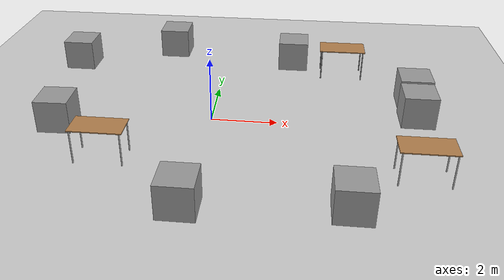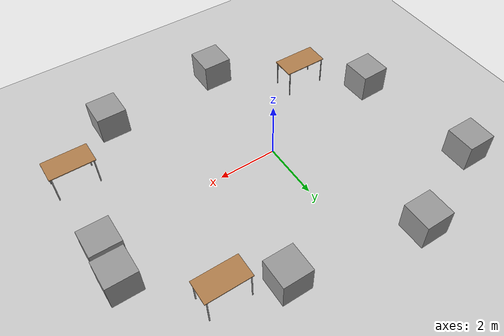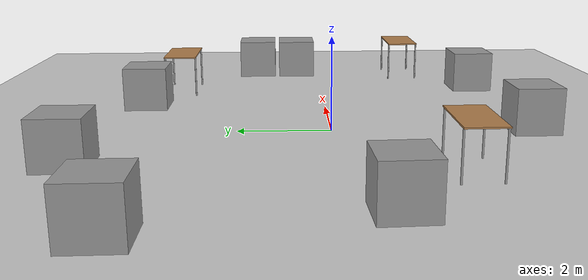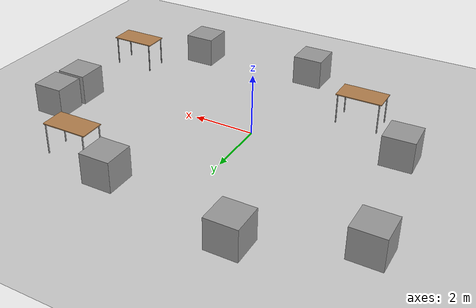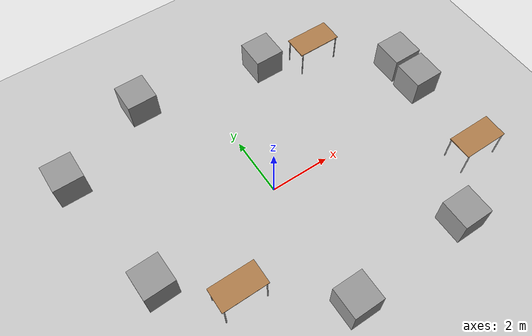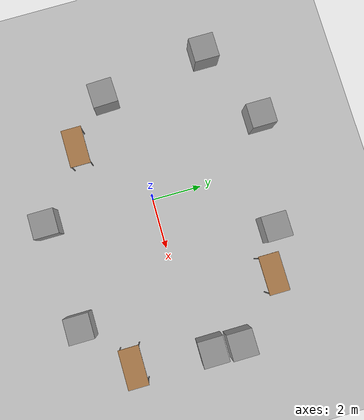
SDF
<sdf version="1.6">
 <world name="default">
  <light name="sun" type="directional">
   <pose>0 0 10 0 -0 0</pose>
   <diffuse>0.8 0.8 0.8 1</diffuse>
   <specular>0.2 0.2 0.2 1</specular>
   <attenuation>
    <range>1000</range>
    <constant>0.9</constant>
    <linear>0.01</linear>
    <quadratic>0.001</quadratic>
   </attenuation>
   <direction>-0.5 0.1 -0.9</direction>
  </light>
  <model name="ground_plane">
   <static>1</static>
   <link name="link">
    <collision name="collision">
     <geometry><plane><normal>0 0 1</normal><size>100 100</size></plane></geometry>
     <surface>
      <contact><collide_bitmask>65535</collide_bitmask></contact>
      <friction><ode><mu>100</mu><mu2>50</mu2></ode></friction>
     </surface>
    </collision>
    <visual name="visual">
     <cast_shadows>0</cast_shadows>
     <geometry><plane><normal>0 0 1</normal><size>100 100</size></plane></geometry>
     <material>
      <script><uri>file://media/materials/scripts/gazebo.material</uri><name>Gazebo/Grey</name></script>
     </material>
    </visual>
   </link>
  </model>
  <gravity>0 0 -9.8</gravity>
  <magnetic_field>6e-06 2.3e-05 -4.2e-05</magnetic_field>
  <atmosphere type="adiabatic"/>
  <physics name="default_physics" default="0" type="ode">
   <max_step_size>0.001</max_step_size>
   <real_time_factor>1</real_time_factor>
   <real_time_update_rate>1000</real_time_update_rate>
  </physics>
  <scene><ambient>0.4 0.4 0.4 1</ambient><background>0.7 0.7 0.7 1</background><shadows>1</shadows></scene>
  <audio><device>default</device></audio>
  <spherical_coordinates>
   <surface_model>EARTH_WGS84</surface_model>
   <latitude_deg>0</latitude_deg>
   <longitude_deg>0</longitude_deg>
   <elevation>0</elevation>
   <heading_deg>0</heading_deg>
  </spherical_coordinates>
  <model name="unit_box">
   <pose>-5.17101 3.59255 0.499995 0 1e-05 1e-05</pose>
   <link name="link">
    <inertial>
     <mass>1</mass>
     <inertia>
      <ixx>0.166667</ixx>
      <ixy>0</ixy>
      <ixz>0</ixz>
      <iyy>0.166667</iyy>
      <iyz>0</iyz>
      <izz>0.166667</izz>
     </inertia>
    </inertial>
    <collision name="collision"><geometry><box><size>1 1 1</size></box></geometry></collision>
    <visual name="visual">
     <geometry><box><size>1 1 1</size></box></geometry>
     <material>
      <script><name>Gazebo/Grey</name><uri>file://media/materials/scripts/gazebo.material</uri></script>
     </material>
    </visual>
   </link>
  </model>
  <model name="unit_box_clone">
   <pose>-4.49734 -0.756354 0.5 0 -0 0.031297</pose>
   <link name="link">
    <inertial>
     <mass>1</mass>
     <inertia>
      <ixx>0.166667</ixx>
      <ixy>0</ixy>
      <ixz>0</ixz>
      <iyy>0.166667</iyy>
      <iyz>0</iyz>
      <izz>0.166667</izz>
     </inertia>
    </inertial>
    <collision name="collision"><geometry><box><size>1 1 1</size></box></geometry></collision>
    <visual name="visual">
     <geometry><box><size>1 1 1</size></box></geometry>
     <material>
      <script><name>Gazebo/Grey</name><uri>file://media/materials/scripts/gazebo.material</uri></script>
     </material>
    </visual>
   </link>
  </model>
  <model name="unit_box_clone_0">
   <pose>-2 5.00002 0.499995 0 1e-05 -5e-06</pose>
   <link name="link">
    <inertial>
     <mass>1</mass>
     <inertia>
      <ixx>0.166667</ixx>
      <ixy>0</ixy>
      <ixz>0</ixz>
      <iyy>0.166667</iyy>
      <iyz>0</iyz>
      <izz>0.166667</izz>
     </inertia>
    </inertial>
    <collision name="collision"><geometry><box><size>1 1 1</size></box></geometry></collision>
    <visual name="visual">
     <geometry><box><size>1 1 1</size></box></geometry>
     <material>
      <script><name>Gazebo/Grey</name><uri>file://media/materials/scripts/gazebo.material</uri></script>
     </material>
    </visual>
   </link>
  </model>
  <model name="unit_box_clone_1">
   <pose>2.38191 4.25167 0.499995 1e-05 -0 5e-06</pose>
   <link name="link">
    <inertial>
     <mass>1</mass>
     <inertia>
      <ixx>0.166667</ixx>
      <ixy>0</ixy>
      <ixz>0</ixz>
      <iyy>0.166667</iyy>
      <iyz>0</iyz>
      <izz>0.166667</izz>
     </inertia>
    </inertial>
    <collision name="collision"><geometry><box><size>1 1 1</size></box></geometry></collision>
    <visual name="visual">
     <geometry><box><size>1 1 1</size></box></geometry>
     <material>
      <script><name>Gazebo/Grey</name><uri>file://media/materials/scripts/gazebo.material</uri></script>
     </material>
    </visual>
   </link>
  </model>
  <model name="unit_box_clone_2">
   <pose>-0.165397 -4.27442 0.499995 0 1e-05 -5e-06</pose>
   <link name="link">
    <inertial>
     <mass>1</mass>
     <inertia>
      <ixx>0.166667</ixx>
      <ixy>0</ixy>
      <ixz>0</ixz>
      <iyy>0.166667</iyy>
      <iyz>0</iyz>
      <izz>0.166667</izz>
     </inertia>
    </inertial>
    <collision name="collision"><geometry><box><size>1 1 1</size></box></geometry></collision>
    <visual name="visual">
     <geometry><box><size>1 1 1</size></box></geometry>
     <material>
      <script><name>Gazebo/Grey</name><uri>file://media/materials/scripts/gazebo.material</uri></script>
     </material>
    </visual>
   </link>
  </model>
  <model name="unit_box_clone_3">
   <pose>4 -4 0.499995 1e-05 -0 5e-06</pose>
   <link name="link">
    <inertial>
     <mass>1</mass>
     <inertia>
      <ixx>0.166667</ixx>
      <ixy>0</ixy>
      <ixz>0</ixz>
      <iyy>0.166667</iyy>
      <iyz>0</iyz>
      <izz>0.166667</izz>
     </inertia>
    </inertial>
    <collision name="collision"><geometry><box><size>1 1 1</size></box></geometry></collision>
    <visual name="visual">
     <geometry><box><size>1 1 1</size></box></geometry>
     <material>
      <script><name>Gazebo/Grey</name><uri>file://media/materials/scripts/gazebo.material</uri></script>
     </material>
    </visual>
   </link>
  </model>
  <model name="unit_box_clone_4">
   <pose>6.19372 0.594708 0.499995 0 1e-05 -5e-06</pose>
   <link name="link">
    <inertial>
     <mass>1</mass>
     <inertia>
      <ixx>0.166667</ixx>
      <ixy>0</ixy>
      <ixz>0</ixz>
      <iyy>0.166667</iyy>
      <iyz>0</iyz>
      <izz>0.166667</izz>
     </inertia>
    </inertial>
    <collision name="collision"><geometry><box><size>1 1 1</size></box></geometry></collision>
    <visual name="visual">
     <geometry><box><size>1 1 1</size></box></geometry>
     <material>
      <script><name>Gazebo/Grey</name><uri>file://media/materials/scripts/gazebo.material</uri></script>
     </material>
    </visual>
   </link>
  </model>
  <model name="table">
   <static>1</static>
   <link name="link">
    <collision name="surface">
     <pose>0 0 1 0 -0 0</pose>
     <geometry><box><size>1.5 0.8 0.03</size></box></geometry>
     <surface><friction><ode><mu>0.6</mu><mu2>0.6</mu2></ode></friction></surface>
    </collision>
    <visual name="visual1">
     <pose>0 0 1 0 -0 0</pose>
     <geometry><box><size>1.5 0.8 0.03</size></box></geometry>
     <material>
      <script><uri>file://media/materials/scripts/gazebo.material</uri><name>Gazebo/Wood</name></script>
     </material>
    </visual>
    <collision name="front_left_leg">
     <pose>0.68 0.38 0.5 0 -0 0</pose>
     <geometry><cylinder><radius>0.02</radius><length>1</length></cylinder></geometry>
    </collision>
    <visual name="front_left_leg">
     <pose>0.68 0.38 0.5 0 -0 0</pose>
     <geometry><cylinder><radius>0.02</radius><length>1</length></cylinder></geometry>
     <material>
      <script><uri>file://media/materials/scripts/gazebo.material</uri><name>Gazebo/Grey</name></script>
     </material>
    </visual>
    <collision name="front_right_leg">
     <pose>0.68 -0.38 0.5 0 -0 0</pose>
     <geometry><cylinder><radius>0.02</radius><length>1</length></cylinder></geometry>
    </collision>
    <visual name="front_right_leg">
     <pose>0.68 -0.38 0.5 0 -0 0</pose>
     <geometry><cylinder><radius>0.02</radius><length>1</length></cylinder></geometry>
     <material>
      <script><uri>file://media/materials/scripts/gazebo.material</uri><name>Gazebo/Grey</name></script>
     </material>
    </visual>
    <collision name="back_right_leg">
     <pose>-0.68 -0.38 0.5 0 -0 0</pose>
     <geometry><cylinder><radius>0.02</radius><length>1</length></cylinder></geometry>
    </collision>
    <visual name="back_right_leg">
     <pose>-0.68 -0.38 0.5 0 -0 0</pose>
     <geometry><cylinder><radius>0.02</radius><length>1</length></cylinder></geometry>
     <material>
      <script><uri>file://media/materials/scripts/gazebo.material</uri><name>Gazebo/Grey</name></script>
     </material>
    </visual>
    <collision name="back_left_leg">
     <pose>-0.68 0.38 0.5 0 -0 0</pose>
     <geometry><cylinder><radius>0.02</radius><length>1</length></cylinder></geometry>
    </collision>
    <visual name="back_left_leg">
     <pose>-0.68 0.38 0.5 0 -0 0</pose>
     <geometry><cylinder><radius>0.02</radius><length>1</length></cylinder></geometry>
     <material>
      <script><uri>file://media/materials/scripts/gazebo.material</uri><name>Gazebo/Grey</name></script>
     </material>
    </visual>
   </link>
   <pose>-2.69705 -2.30796 0 0 -0 0</pose>
  </model>
  <model name="table_clone">
   <static>1</static>
   <link name="link">
    <collision name="surface">
     <pose>0 0 1 0 -0 0</pose>
     <geometry><box><size>1.5 0.8 0.03</size></box></geometry>
     <surface><friction><ode><mu>0.6</mu><mu2>0.6</mu2></ode></friction></surface>
    </collision>
    <visual name="visual1">
     <pose>0 0 1 0 -0 0</pose>
     <geometry><box><size>1.5 0.8 0.03</size></box></geometry>
     <material>
      <script><uri>file://media/materials/scripts/gazebo.material</uri><name>Gazebo/Wood</name></script>
     </material>
    </visual>
    <collision name="front_left_leg">
     <pose>0.68 0.38 0.5 0 -0 0</pose>
     <geometry><cylinder><radius>0.02</radius><length>1</length></cylinder></geometry>
    </collision>
    <visual name="front_left_leg">
     <pose>0.68 0.38 0.5 0 -0 0</pose>
     <geometry><cylinder><radius>0.02</radius><length>1</length></cylinder></geometry>
     <material>
      <script><uri>file://media/materials/scripts/gazebo.material</uri><name>Gazebo/Grey</name></script>
     </material>
    </visual>
    <collision name="front_right_leg">
     <pose>0.68 -0.38 0.5 0 -0 0</pose>
     <geometry><cylinder><radius>0.02</radius><length>1</length></cylinder></geometry>
    </collision>
    <visual name="front_right_leg">
     <pose>0.68 -0.38 0.5 0 -0 0</pose>
     <geometry><cylinder><radius>0.02</radius><length>1</length></cylinder></geometry>
     <material>
      <script><uri>file://media/materials/scripts/gazebo.material</uri><name>Gazebo/Grey</name></script>
     </material>
    </visual>
    <collision name="back_right_leg">
     <pose>-0.68 -0.38 0.5 0 -0 0</pose>
     <geometry><cylinder><radius>0.02</radius><length>1</length></cylinder></geometry>
    </collision>
    <visual name="back_right_leg">
     <pose>-0.68 -0.38 0.5 0 -0 0</pose>
     <geometry><cylinder><radius>0.02</radius><length>1</length></cylinder></geometry>
     <material>
      <script><uri>file://media/materials/scripts/gazebo.material</uri><name>Gazebo/Grey</name></script>
     </material>
    </visual>
    <collision name="back_left_leg">
     <pose>-0.68 0.38 0.5 0 -0 0</pose>
     <geometry><cylinder><radius>0.02</radius><length>1</length></cylinder></geometry>
    </collision>
    <visual name="back_left_leg">
     <pose>-0.68 0.38 0.5 0 -0 0</pose>
     <geometry><cylinder><radius>0.02</radius><length>1</length></cylinder></geometry>
     <material>
      <script><uri>file://media/materials/scripts/gazebo.material</uri><name>Gazebo/Grey</name></script>
     </material>
    </visual>
   </link>
   <pose>4.04727 3.61293 0 0 -0 0</pose>
  </model>
  <model name="table_clone_clone">
   <static>1</static>
   <link name="link">
    <collision name="surface">
     <pose>0 0 1 0 -0 0</pose>
     <geometry><box><size>1.5 0.8 0.03</size></box></geometry>
     <surface><friction><ode><mu>0.6</mu><mu2>0.6</mu2></ode></friction></surface>
    </collision>
    <visual name="visual1">
     <pose>0 0 1 0 -0 0</pose>
     <geometry><box><size>1.5 0.8 0.03</size></box></geometry>
     <material>
      <script><uri>file://media/materials/scripts/gazebo.material</uri><name>Gazebo/Wood</name></script>
     </material>
    </visual>
    <collision name="front_left_leg">
     <pose>0.68 0.38 0.5 0 -0 0</pose>
     <geometry><cylinder><radius>0.02</radius><length>1</length></cylinder></geometry>
    </collision>
    <visual name="front_left_leg">
     <pose>0.68 0.38 0.5 0 -0 0</pose>
     <geometry><cylinder><radius>0.02</radius><length>1</length></cylinder></geometry>
     <material>
      <script><uri>file://media/materials/scripts/gazebo.material</uri><name>Gazebo/Grey</name></script>
     </material>
    </visual>
    <collision name="front_right_leg">
     <pose>0.68 -0.38 0.5 0 -0 0</pose>
     <geometry><cylinder><radius>0.02</radius><length>1</length></cylinder></geometry>
    </collision>
    <visual name="front_right_leg">
     <pose>0.68 -0.38 0.5 0 -0 0</pose>
     <geometry><cylinder><radius>0.02</radius><length>1</length></cylinder></geometry>
     <material>
      <script><uri>file://media/materials/scripts/gazebo.material</uri><name>Gazebo/Grey</name></script>
     </material>
    </visual>
    <collision name="back_right_leg">
     <pose>-0.68 -0.38 0.5 0 -0 0</pose>
     <geometry><cylinder><radius>0.02</radius><length>1</length></cylinder></geometry>
    </collision>
    <visual name="back_right_leg">
     <pose>-0.68 -0.38 0.5 0 -0 0</pose>
     <geometry><cylinder><radius>0.02</radius><length>1</length></cylinder></geometry>
     <material>
      <script><uri>file://media/materials/scripts/gazebo.material</uri><name>Gazebo/Grey</name></script>
     </material>
    </visual>
    <collision name="back_left_leg">
     <pose>-0.68 0.38 0.5 0 -0 0</pose>
     <geometry><cylinder><radius>0.02</radius><length>1</length></cylinder></geometry>
    </collision>
    <visual name="back_left_leg">
     <pose>-0.68 0.38 0.5 0 -0 0</pose>
     <geometry><cylinder><radius>0.02</radius><length>1</length></cylinder></geometry>
     <material>
      <script><uri>file://media/materials/scripts/gazebo.material</uri><name>Gazebo/Grey</name></script>
     </material>
    </visual>
   </link>
   <pose>5.90959 -2.41186 0 0 -0 0</pose>
  </model>
  <model name="unit_box_clone_4_clone">
   <pose>6.23674 1.71019 0.499995 0 -1e-05 -5e-06</pose>
   <link name="link">
    <inertial>
     <mass>1</mass>
     <inertia>
      <ixx>0.166667</ixx>
      <ixy>0</ixy>
      <ixz>0</ixz>
      <iyy>0.166667</iyy>
      <iyz>0</iyz>
      <izz>0.166667</izz>
     </inertia>
    </inertial>
    <collision name="collision"><geometry><box><size>1 1 1</size></box></geometry></collision>
    <visual name="visual">
     <geometry><box><size>1 1 1</size></box></geometry>
     <material>
      <script><name>Gazebo/Grey</name><uri>file://media/materials/scripts/gazebo.material</uri></script>
     </material>
    </visual>
   </link>
  </model>
 </world>
</sdf>
